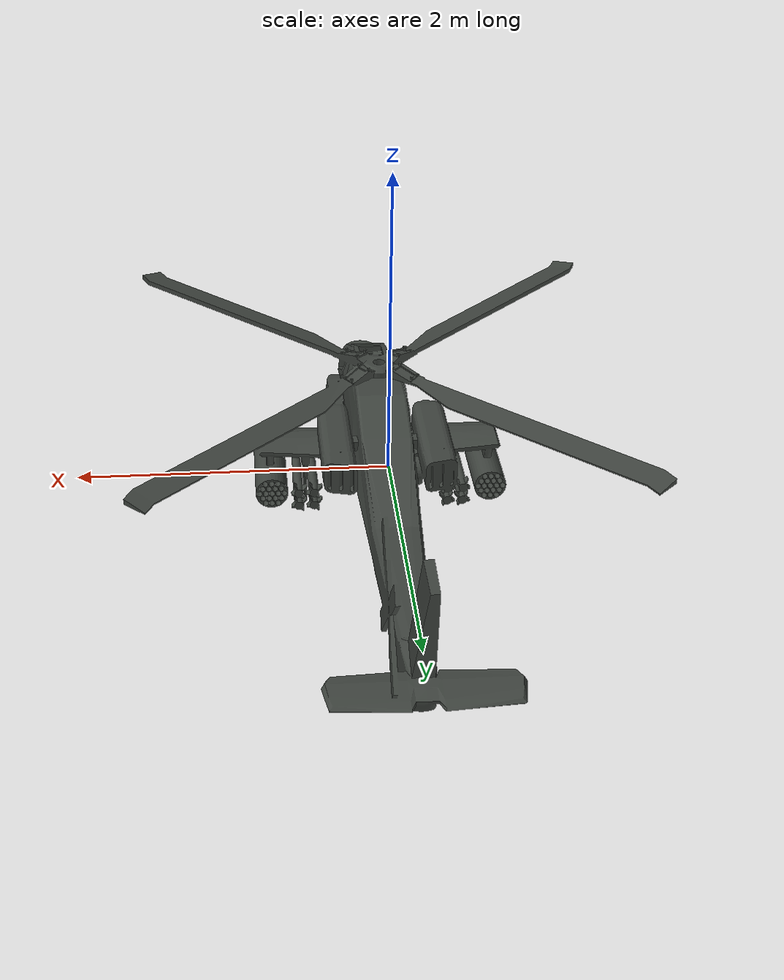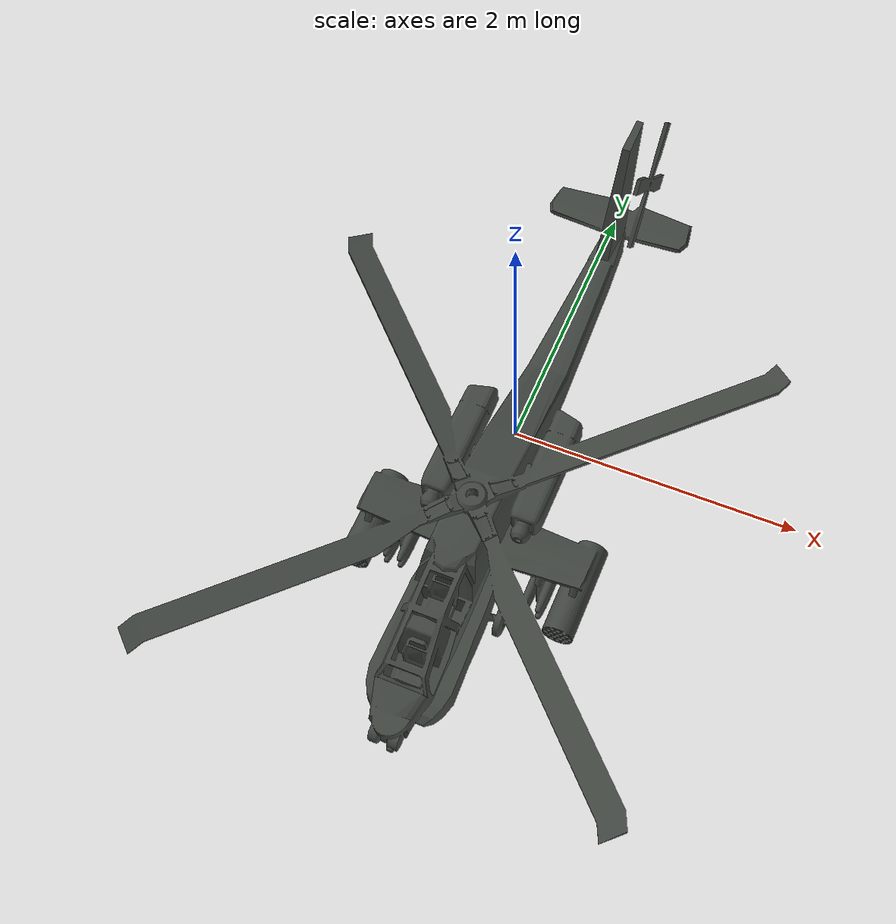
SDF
<?xml version="1.0"?>
<sdf version="1.9">
  <model name="heli">
    <static>false</static>
    <link name="body">
      <gravity>false</gravity><kinematic>true</kinematic>
      <inertial><mass>1.0</mass><inertia><ixx>0.05</ixx><iyy>0.05</iyy><izz>0.05</izz>
        <ixy>0</ixy><ixz>0</ixz><iyz>0</iyz></inertia></inertial>
      <visual name="visual">
        <geometry><mesh><uri>package://drone_sim/meshes/heli.stl</uri></mesh></geometry>
        <material><ambient>0.20 0.22 0.20 1</ambient><diffuse>0.25 0.27 0.25 1</diffuse></material>
      </visual>
      <collision name="collision"><geometry><box><size>3.3 5.0 1.5</size></box></geometry></collision>
    </link>
  </model>
</sdf>
